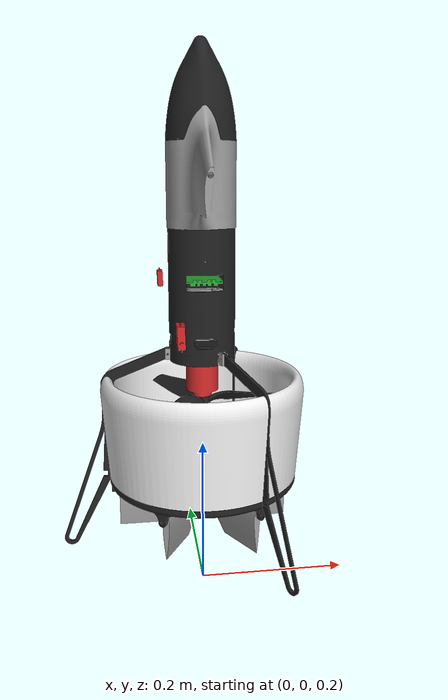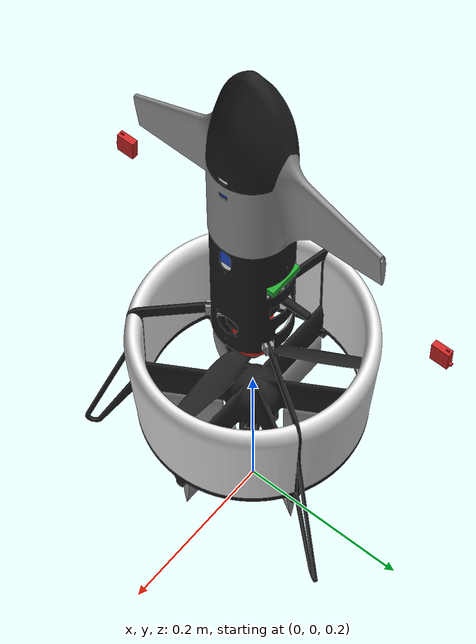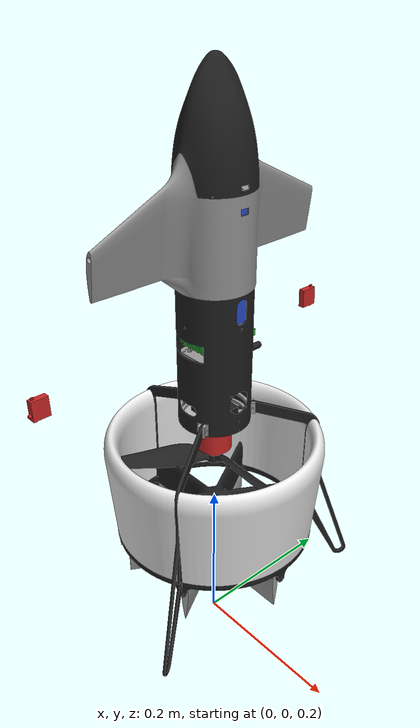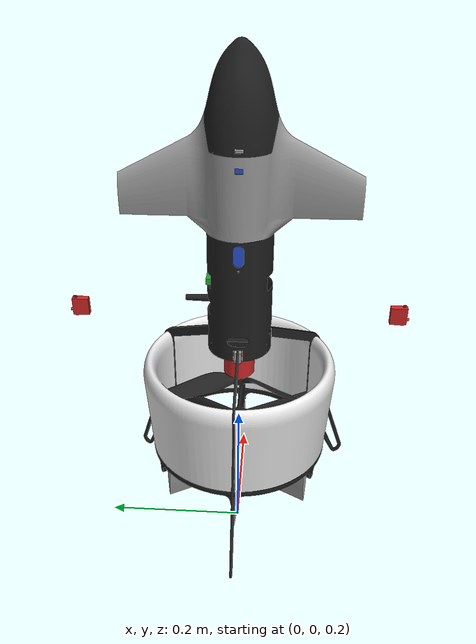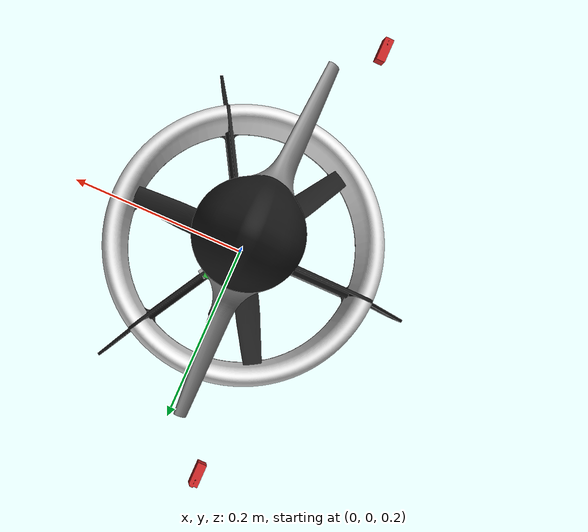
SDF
<?xml version='1.0'?>
<sdf version='1.5'>
  <model name='SHC09'>
    <pose>0 0 0.5 0 0 0</pose>
    <link name='base_link'>
      <inertial>
        <pose>0 0 0.117687 0 0 0</pose>
        <mass>1.6</mass>
        <inertia>
            <ixx>0.01149</ixx>
            <ixy>0</ixy>
            <ixz>0</ixz>
            <iyy>0.01153</iyy>
            <iyz>0</iyz>
            <izz>0.004865</izz>
          </inertia>
      </inertial>
      <visual name='visual'>
        <pose>0 0 0 0 -0 3.1415926</pose>
        <geometry>
          <mesh>
            <uri>model://SHC09/meshes/Battery-6s-10000-2170.STL</uri>
            <scale>1 1 1</scale>
          </mesh>
        </geometry>
        <material>
          <lighting>1</lighting>
          <script>
            <uri>file://media/materials/scripts/gazebo.material</uri>
            <name>Gazebo/Blue</name>
          </script>
          <shader type='pixel'/>
          <emissive>0 0 0 1</emissive>
        </material>
        <transparency>0</transparency>
        <cast_shadows>1</cast_shadows>
      </visual>
      <collision name='collision'>
        <pose>0.0 -0.0 0.07 0 -0 0</pose>
        <geometry>
          <box>
            <size>0.25 0.25 0.6</size>
          </box>
        </geometry>
      </collision>
      <gravity>1</gravity>
      <velocity_decay/>
      <self_collide>0</self_collide>
    </link>
    <link name='link_1'>
      <inertial>
        <mass>0.00000001</mass>
        <inertia>
          <ixx>0.000001</ixx>
          <ixy>0.0</ixy>
          <iyy>0.000001</iyy>
          <ixz>0.0</ixz>
          <iyz>0.0</iyz>
          <izz>0.000001</izz>
        </inertia>
      </inertial>

      <visual name='visual'>
        <pose>0 0 0 0 -0 3.1415926</pose>
        <geometry>
          <mesh>
            <uri>model://SHC09/meshes/bec-Hobbywing-Platinum 60A.STL</uri>
            <scale>1 1 1</scale>
          </mesh>
        </geometry>
        <material>
          <lighting>1</lighting>
          <script>
            <uri>file://media/materials/scripts/gazebo.material</uri>
            <name>Gazebo/Black</name>
          </script>
          <shader type='pixel'/>
          <emissive>0 0 0 1</emissive>
        </material>
        <transparency>0</transparency>
        <cast_shadows>1</cast_shadows>
      </visual>
    </link>
    <link name='link_10'>
      <inertial>
        <mass>0.00000001</mass>
        <inertia>
          <ixx>0.000001</ixx>
          <ixy>0.0</ixy>
          <iyy>0.000001</iyy>
          <ixz>0.0</ixz>
          <iyz>0.0</iyz>
          <izz>0.000001</izz>
        </inertia>
      </inertial>
      <visual name='visual'>
        <pose>0 0 0 0 -0 3.1415926</pose>
        <geometry>
          <mesh>
            <uri>model://SHC09/meshes/duct-b-SHW09.STL</uri>
            <scale>1 1 1</scale>
          </mesh>
        </geometry>
        <material>
          <lighting>1</lighting>
          <script>
            <uri>file://media/materials/scripts/gazebo.material</uri>
            <name>Gazebo/Black</name>
          </script>
          <shader type='pixel'/>
          <emissive>0 0 0 1</emissive>
        </material>
        <transparency>0</transparency>
        <cast_shadows>1</cast_shadows>
      </visual>
    </link>
    <link name='link_11'>
      <inertial>
        <mass>0.00000001</mass>
        <inertia>
          <ixx>0.000001</ixx>
          <ixy>0.0</ixy>
          <iyy>0.000001</iyy>
          <ixz>0.0</ixz>
          <iyz>0.0</iyz>
          <izz>0.000001</izz>
        </inertia>
      </inertial>

      <visual name='visual'>
        <pose>0 0 0 0 -0 3.1415926</pose>
        <geometry>
          <mesh>
            <uri>model://SHC09/meshes/duct-SH09-1.STL</uri>
            <scale>1 1 1</scale>
          </mesh>
        </geometry>
        <material>
          <lighting>1</lighting>
          <script>
            <uri>file://media/materials/scripts/gazebo.material</uri>
            <name>Gazebo/White</name>
          </script>
          <shader type='pixel'/>
          <emissive>0 0 0 1</emissive>
        </material>
        <transparency>0</transparency>
        <cast_shadows>1</cast_shadows>
      </visual>
    </link>
    <link name='link_12'>
      <inertial>
        <mass>0.00000001</mass>
        <inertia>
          <ixx>0.000001</ixx>
          <ixy>0.0</ixy>
          <iyy>0.000001</iyy>
          <ixz>0.0</ixz>
          <iyz>0.0</iyz>
          <izz>0.000001</izz>
        </inertia>
      </inertial>

      <visual name='visual'>
        <pose>0 0 0 0 -0 3.1415926</pose>
        <geometry>
          <mesh>
            <uri>model://SHC09/meshes/duct-SH09-2.STL</uri>
            <scale>1 1 1</scale>
          </mesh>
        </geometry>
        <material>
          <lighting>1</lighting>
          <script>
            <uri>file://media/materials/scripts/gazebo.material</uri>
            <name>Gazebo/White</name>
          </script>
          <shader type='pixel'/>
          <emissive>0 0 0 1</emissive>
        </material>
        <transparency>0</transparency>
        <cast_shadows>1</cast_shadows>
      </visual>
    </link>
    <link name='link_13'>
      <inertial>
        <mass>0.00000001</mass>
        <inertia>
          <ixx>0.000001</ixx>
          <ixy>0.0</ixy>
          <iyy>0.000001</iyy>
          <ixz>0.0</ixz>
          <iyz>0.0</iyz>
          <izz>0.000001</izz>
        </inertia>
      </inertial>

      <visual name='visual'>
        <pose>0 0 0 0 -0 3.1415926</pose>
        <geometry>
          <mesh>
            <uri>model://SHC09/meshes/duct-SH09-3.STL</uri>
            <scale>1 1 1</scale>
          </mesh>
        </geometry>
        <material>
          <lighting>1</lighting>
          <script>
            <uri>file://media/materials/scripts/gazebo.material</uri>
            <name>Gazebo/White</name>
          </script>
          <shader type='pixel'/>
          <emissive>0 0 0 1</emissive>
        </material>
        <transparency>0</transparency>
        <cast_shadows>1</cast_shadows>
      </visual>
    </link>
    <link name='link_14'>
      <inertial>
        <mass>0.00000001</mass>
        <inertia>
          <ixx>0.000001</ixx>
          <ixy>0.0</ixy>
          <iyy>0.000001</iyy>
          <ixz>0.0</ixz>
          <iyz>0.0</iyz>
          <izz>0.000001</izz>
        </inertia>
      </inertial>

      <visual name='visual'>
        <pose>0 0 0 0 -0 3.1415926</pose>
        <geometry>
          <mesh>
            <uri>model://SHC09/meshes/fuselage-09.STL</uri>
            <scale>1 1 1</scale>
          </mesh>
        </geometry>
        <material>
          <lighting>1</lighting>
          <script>
            <uri>file://media/materials/scripts/gazebo.material</uri>
            <name>Gazebo/Black</name>
          </script>
          <shader type='pixel'/>
          <emissive>0 0 0 1</emissive>
        </material>
        <transparency>0</transparency>
        <cast_shadows>1</cast_shadows>
      </visual>
    </link>
    <link name='link_15'>
      <inertial>
        <mass>0.00000001</mass>
        <inertia>
          <ixx>0.000001</ixx>
          <ixy>0.0</ixy>
          <iyy>0.000001</iyy>
          <ixz>0.0</ixz>
          <iyz>0.0</iyz>
          <izz>0.000001</izz>
        </inertia>
      </inertial>

      <visual name='visual'>
        <pose>0 0 0 0 -0 3.1415926</pose>
        <geometry>
          <mesh>
            <uri>model://SHC09/meshes/head-SHC09-1.STL</uri>
            <scale>1 1 1</scale>
          </mesh>
        </geometry>
        <material>
          <lighting>1</lighting>
          <script>
            <uri>file://media/materials/scripts/gazebo.material</uri>
            <name>Gazebo/Black</name>
          </script>
          <shader type='pixel'/>
          <emissive>0 0 0 1</emissive>
        </material>
        <transparency>0</transparency>
        <cast_shadows>1</cast_shadows>
      </visual>
    </link>
    <link name='link_16'>
      <inertial>
        <mass>0.00000001</mass>
        <inertia>
          <ixx>0.000001</ixx>
          <ixy>0.0</ixy>
          <iyy>0.000001</iyy>
          <ixz>0.0</ixz>
          <iyz>0.0</iyz>
          <izz>0.000001</izz>
        </inertia>
      </inertial>

      <visual name='visual'>
        <pose>0 0 0 0 -0 3.1415926</pose>
        <geometry>
          <mesh>
            <uri>model://SHC09/meshes/head-SHC09-2.STL</uri>
            <scale>1 1 1</scale>
          </mesh>
        </geometry>
        <material>
          <lighting>1</lighting>
          <script>
            <uri>file://media/materials/scripts/gazebo.material</uri>
            <name>Gazebo/Grey</name>
          </script>
          <shader type='pixel'/>
          <emissive>0 0 0 1</emissive>
        </material>
        <transparency>0</transparency>
        <cast_shadows>1</cast_shadows>
      </visual>
    </link>
    <link name='link_17'>
      <inertial>
        <mass>0.00000001</mass>
        <inertia>
          <ixx>0.000001</ixx>
          <ixy>0.0</ixy>
          <iyy>0.000001</iyy>
          <ixz>0.0</ixz>
          <iyz>0.0</iyz>
          <izz>0.000001</izz>
        </inertia>
      </inertial>

      <visual name='visual'>
        <pose>0 0 0 0 -0 3.1415926</pose>
        <geometry>
          <mesh>
            <uri>model://SHC09/meshes/motor-Sunnysky-X3520-7-780KV III.STL</uri>
            <scale>1 1 1</scale>
          </mesh>
        </geometry>
        <material>
          <lighting>1</lighting>
          <script>
            <uri>file://media/materials/scripts/gazebo.material</uri>
            <name>Gazebo/Red</name>
          </script>
          <shader type='pixel'/>
          <emissive>0 0 0 1</emissive>
        </material>
        <transparency>0</transparency>
        <cast_shadows>1</cast_shadows>
      </visual>
    </link>
    <link name='rotor'>
      <inertial>
        <mass>0.01836</mass>
        <inertia>
          <ixx>0.000019</ixx>
          <ixy>0</ixy>
          <ixz>0</ixz>
          <iyy>0.000019</iyy>
          <iyz>0</iyz>
          <izz>0.000037</izz>
        </inertia>
        <pose>-0.0 -0.0 -0.04250779552 0 -0 0</pose>
      </inertial>
      <gravity>1</gravity>
      <self_collide>0</self_collide>
      <kinematic>0</kinematic>
      <enable_wind>0</enable_wind>
      <visual name='visual'>
        <pose>0 0 0 0 -0 3.1415926</pose>
        <geometry>
          <mesh>
            <uri>model://SHC09/meshes/Rotor-iflight-13inch-2-CW-cut9.STL</uri>
            <scale>1 1 1</scale>
          </mesh>
        </geometry>
        <material>
          <lighting>1</lighting>
          <script>
            <uri>file://media/materials/scripts/gazebo.material</uri>
            <name>Gazebo/Black</name>
          </script>
          <shader type='pixel'/>
          <emissive>0 0 0 1</emissive>
        </material>
        <transparency>0</transparency>
        <cast_shadows>1</cast_shadows>
      </visual>
    </link>
    <link name='link_19'>
      <inertial>
        <mass>0.00000001</mass>
        <inertia>
          <ixx>0.000001</ixx>
          <ixy>0.0</ixy>
          <iyy>0.000001</iyy>
          <ixz>0.0</ixz>
          <iyz>0.0</iyz>
          <izz>0.000001</izz>
        </inertia>
      </inertial>

      <visual name='visual'>
        <pose>0 0 0 0 -0 3.1415926</pose>
        <geometry>
          <mesh>
            <uri>model://SHC09/meshes/RTK-antenna.STL</uri>
            <scale>1 1 1</scale>
          </mesh>
        </geometry>
        <material>
          <lighting>1</lighting>
          <script>
            <uri>file://media/materials/scripts/gazebo.material</uri>
            <name>Gazebo/Grey</name>
          </script>
          <shader type='pixel'/>
          <emissive>0 0 0 1</emissive>
        </material>
        <transparency>0</transparency>
        <cast_shadows>1</cast_shadows>
      </visual>
    </link>
    <link name='link_2'>
      <inertial>
        <mass>0.00000001</mass>
        <inertia>
          <ixx>0.000001</ixx>
          <ixy>0.0</ixy>
          <iyy>0.000001</iyy>
          <ixz>0.0</ixz>
          <iyz>0.0</iyz>
          <izz>0.000001</izz>
        </inertia>
      </inertial>

      <visual name='visual'>
        <pose>0 0 0 0 -0 3.1415926</pose>
        <geometry>
          <mesh>
            <uri>model://SHC09/meshes/box up-09.STL</uri>
            <scale>1 1 1</scale>
          </mesh>
        </geometry>
        <material>
          <lighting>1</lighting>
          <script>
            <uri>file://media/materials/scripts/gazebo.material</uri>
            <name>Gazebo/Grey</name>
          </script>
          <shader type='pixel'/>
          <emissive>0 0 0 1</emissive>
        </material>
        <transparency>0</transparency>
        <cast_shadows>1</cast_shadows>
      </visual>
    </link>
    <link name='link_20'>
      <inertial>
        <mass>0.00000001</mass>
        <inertia>
          <ixx>0.000001</ixx>
          <ixy>0.0</ixy>
          <iyy>0.000001</iyy>
          <ixz>0.0</ixz>
          <iyz>0.0</iyz>
          <izz>0.000001</izz>
        </inertia>
        <pose>0.018145 0 -0.152522 0 -0 0</pose>
      </inertial>

      <visual name='visual'>
        <pose>0 0 0 0 -0 3.1415926</pose>
        <geometry>
          <mesh>
            <uri>model://SHC09/meshes/servo-KST-X08H-1.STL</uri>
            <scale>1 1 1</scale>
          </mesh>
        </geometry>
        <material>
          <lighting>1</lighting>
          <script>
            <uri>file://media/materials/scripts/gazebo.material</uri>
            <name>Gazebo/Red</name>
          </script>
          <shader type='pixel'/>
          <emissive>0 0 0 1</emissive>
        </material>
        <transparency>0</transparency>
        <cast_shadows>1</cast_shadows>
      </visual>
    </link>
    <link name='link_21'>
      <inertial>
        <mass>0.00000001</mass>
        <inertia>
          <ixx>0.000001</ixx>
          <ixy>0.0</ixy>
          <iyy>0.000001</iyy>
          <ixz>0.0</ixz>
          <iyz>0.0</iyz>
          <izz>0.000001</izz>
        </inertia>
        <pose>0.009 -0.015714 -0.152522 0 -0 0</pose>
      </inertial>

      <visual name='visual'>
        <pose>0 0 0 0 -0 3.1415926</pose>
        <geometry>
          <mesh>
            <uri>model://SHC09/meshes/servo-KST-X08H-2.STL</uri>
            <scale>1 1 1</scale>
          </mesh>
        </geometry>
        <material>
          <lighting>1</lighting>
          <script>
            <uri>file://media/materials/scripts/gazebo.material</uri>
            <name>Gazebo/Red</name>
          </script>
          <shader type='pixel'/>
          <emissive>0 0 0 1</emissive>
        </material>
        <transparency>0</transparency>
        <cast_shadows>1</cast_shadows>
      </visual>
    </link>
    <link name='link_22'>
      <inertial>
        <mass>0.00000001</mass>
        <inertia>
          <ixx>0.000001</ixx>
          <ixy>0.0</ixy>
          <iyy>0.000001</iyy>
          <ixz>0.0</ixz>
          <iyz>0.0</iyz>
          <izz>0.000001</izz>
        </inertia>
        <pose>-0.009072 -0.015714 -0.152522 0 -0 0</pose>
      </inertial>

      <visual name='visual'>
        <pose>0 0 0 0 -0 3.1415926</pose>
        <geometry>
          <mesh>
            <uri>model://SHC09/meshes/servo-KST-X08H-3.STL</uri>
            <scale>1 1 1</scale>
          </mesh>
        </geometry>
        <material>
          <lighting>1</lighting>
          <script>
            <uri>file://media/materials/scripts/gazebo.material</uri>
            <name>Gazebo/Red</name>
          </script>
          <shader type='pixel'/>
          <emissive>0 0 0 1</emissive>
        </material>
        <transparency>0</transparency>
        <cast_shadows>1</cast_shadows>
      </visual>
    </link>
    <link name='link_23'>
      <inertial>
        <mass>0.00000001</mass>
        <inertia>
          <ixx>0.000001</ixx>
          <ixy>0.0</ixy>
          <iyy>0.000001</iyy>
          <ixz>0.0</ixz>
          <iyz>0.0</iyz>
          <izz>0.000001</izz>
        </inertia>
        <pose>-0.018145 0 -0.152522 0 -0 0</pose>
      </inertial>

      <visual name='visual'>
        <pose>0 0 0 0 -0 3.1415926</pose>
        <geometry>
          <mesh>
            <uri>model://SHC09/meshes/servo-KST-X08H-4.STL</uri>
            <scale>1 1 1</scale>
          </mesh>
        </geometry>
        <material>
          <lighting>1</lighting>
          <script>
            <uri>file://media/materials/scripts/gazebo.material</uri>
            <name>Gazebo/Red</name>
          </script>
          <shader type='pixel'/>
          <emissive>0 0 0 1</emissive>
        </material>
        <transparency>0</transparency>
        <cast_shadows>1</cast_shadows>
      </visual>
    </link>
    <link name='link_24'>
      <inertial>
        <mass>0.00000001</mass>
        <inertia>
          <ixx>0.000001</ixx>
          <ixy>0.0</ixy>
          <iyy>0.000001</iyy>
          <ixz>0.0</ixz>
          <iyz>0.0</iyz>
          <izz>0.000001</izz>
        </inertia>
        <pose>-0.009072 0.015714 -0.152522 0 -0 0</pose>
      </inertial>

      <visual name='visual'>
        <pose>0 0 0 0 -0 3.1415926</pose>
        <geometry>
          <mesh>
            <uri>model://SHC09/meshes/servo-KST-X08H-5.STL</uri>
            <scale>1 1 1</scale>
          </mesh>
        </geometry>
        <material>
          <lighting>1</lighting>
          <script>
            <uri>file://media/materials/scripts/gazebo.material</uri>
            <name>Gazebo/Red</name>
          </script>
          <shader type='pixel'/>
          <emissive>0 0 0 1</emissive>
        </material>
        <transparency>0</transparency>
        <cast_shadows>1</cast_shadows>
      </visual>
    </link>
    <link name='link_25'>
      <inertial>
        <mass>0.00000001</mass>
        <inertia>
          <ixx>0.000001</ixx>
          <ixy>0.0</ixy>
          <iyy>0.000001</iyy>
          <ixz>0.0</ixz>
          <iyz>0.0</iyz>
          <izz>0.000001</izz>
        </inertia>
        <pose>0.009072 0.015714 -0.152522 0 -0 0</pose>
      </inertial>

      <visual name='visual'>
        <pose>0 0 0 0 -0 3.1415926</pose>
        <geometry>
          <mesh>
            <uri>model://SHC09/meshes/servo-KST-X08H-6.STL</uri>
            <scale>1 1 1</scale>
          </mesh>
        </geometry>
        <material>
          <lighting>1</lighting>
          <script>
            <uri>file://media/materials/scripts/gazebo.material</uri>
            <name>Gazebo/Red</name>
          </script>
          <shader type='pixel'/>
          <emissive>0 0 0 1</emissive>
        </material>
        <transparency>0</transparency>
        <cast_shadows>1</cast_shadows>
      </visual>
    </link>
    <link name='link_26'>
      <inertial>
        <mass>0.00000001</mass>
        <inertia>
          <ixx>0.000001</ixx>
          <ixy>0.0</ixy>
          <iyy>0.000001</iyy>
          <ixz>0.0</ixz>
          <iyz>0.0</iyz>
          <izz>0.000001</izz>
        </inertia>
      </inertial>

      <visual name='visual'>
        <pose>0 0 0 0 -0 3.1415926</pose>
        <geometry>
          <mesh>
            <uri>model://SHC09/meshes/shelf1-SHC09.STL</uri>
            <scale>1 1 1</scale>
          </mesh>
        </geometry>
        <material>
          <lighting>1</lighting>
          <script>
            <uri>file://media/materials/scripts/gazebo.material</uri>
            <name>Gazebo/Grey</name>
          </script>
          <shader type='pixel'/>
          <emissive>0 0 0 1</emissive>
        </material>
        <transparency>0</transparency>
        <cast_shadows>1</cast_shadows>
      </visual>
    </link>
    <link name='link_27'>
      <inertial>
        <mass>0.00000001</mass>
        <inertia>
          <ixx>0.000001</ixx>
          <ixy>0.0</ixy>
          <iyy>0.000001</iyy>
          <ixz>0.0</ixz>
          <iyz>0.0</iyz>
          <izz>0.000001</izz>
        </inertia>
      </inertial>

      <visual name='visual'>
        <pose>0 0 0 0 -0 3.1415926</pose>
        <geometry>
          <mesh>
            <uri>model://SHC09/meshes/shelf2-SHC09.STL</uri>
            <scale>1 1 1</scale>
          </mesh>
        </geometry>
        <material>
          <lighting>1</lighting>
          <script>
            <uri>file://media/materials/scripts/gazebo.material</uri>
            <name>Gazebo/Grey</name>
          </script>
          <shader type='pixel'/>
          <emissive>0 0 0 1</emissive>
        </material>
        <transparency>0</transparency>
        <cast_shadows>1</cast_shadows>
      </visual>
    </link>
    <link name='link_28'>
      <inertial>
        <mass>0.00000001</mass>
        <inertia>
          <ixx>0.000001</ixx>
          <ixy>0.0</ixy>
          <iyy>0.000001</iyy>
          <ixz>0.0</ixz>
          <iyz>0.0</iyz>
          <izz>0.000001</izz>
        </inertia>
      </inertial>

      <visual name='visual'>
        <pose>0 0 0 0 -0 3.1415926</pose>
        <geometry>
          <mesh>
            <uri>model://SHC09/meshes/shelf3-09.STL</uri>
            <scale>1 1 1</scale>
          </mesh>
        </geometry>
        <material>
          <lighting>1</lighting>
          <script>
            <uri>file://media/materials/scripts/gazebo.material</uri>
            <name>Gazebo/Grey</name>
          </script>
          <shader type='pixel'/>
          <emissive>0 0 0 1</emissive>
        </material>
        <transparency>0</transparency>
        <cast_shadows>1</cast_shadows>
      </visual>
    </link>
    <link name='link_29'>
      <inertial>
        <mass>0.00000001</mass>
        <inertia>
          <ixx>0.000001</ixx>
          <ixy>0.0</ixy>
          <iyy>0.000001</iyy>
          <ixz>0.0</ixz>
          <iyz>0.0</iyz>
          <izz>0.000001</izz>
        </inertia>
      </inertial>

      <visual name='visual'>
        <pose>0 0 0 0 -0 3.1415926</pose>
        <geometry>
          <mesh>
            <uri>model://SHC09/meshes/shelf4-09.STL</uri>
            <scale>1 1 1</scale>
          </mesh>
        </geometry>
        <material>
          <lighting>1</lighting>
          <script>
            <uri>file://media/materials/scripts/gazebo.material</uri>
            <name>Gazebo/Grey</name>
          </script>
          <shader type='pixel'/>
          <emissive>0 0 0 1</emissive>
        </material>
        <transparency>0</transparency>
        <cast_shadows>1</cast_shadows>
      </visual>
    </link>
    <link name='CS4'>
      <inertial>
        <mass>0.00000001</mass>
        <inertia>
          <ixx>0.000001</ixx>
          <ixy>0.0</ixy>
          <iyy>0.000001</iyy>
          <ixz>0.0</ixz>
          <iyz>0.0</iyz>
          <izz>0.000001</izz>
        </inertia>
        <pose>-0.073 0 -0.174479 0 -0 0</pose>
      </inertial>

      <visual name='visual'>
        <pose>0 0 0 0 -0 3.1415926</pose>
        <geometry>
          <mesh>
            <uri>model://SHC09/meshes/control surface-60-80-1.STL</uri>
            <scale>1 1 1</scale>
          </mesh>
        </geometry>
        <material>
          <lighting>1</lighting>
          <script>
            <uri>file://media/materials/scripts/gazebo.material</uri>
            <name>Gazebo/Grey</name>
          </script>
          <shader type='pixel'/>
          <emissive>0 0 0 1</emissive>
        </material>
        <transparency>0</transparency>
        <cast_shadows>1</cast_shadows>
      </visual>
    </link>
    <link name='link_30'>
      <inertial>
        <mass>0.00000001</mass>
        <inertia>
          <ixx>0.000001</ixx>
          <ixy>0.0</ixy>
          <iyy>0.000001</iyy>
          <ixz>0.0</ixz>
          <iyz>0.0</iyz>
          <izz>0.000001</izz>
        </inertia>
      </inertial>

      <visual name='visual'>
        <pose>0 0 0 0 -0 3.1415926</pose>
        <geometry>
          <mesh>
            <uri>model://SHC09/meshes/tail-SHW09-1.STL</uri>
            <scale>1 1 1</scale>
          </mesh>
        </geometry>
        <material>
          <lighting>1</lighting>
          <script>
            <uri>file://media/materials/scripts/gazebo.material</uri>
            <name>Gazebo/Black</name>
          </script>
          <shader type='pixel'/>
          <emissive>0 0 0 1</emissive>
        </material>
        <transparency>0</transparency>
        <cast_shadows>1</cast_shadows>
      </visual>
    </link>
    <link name='link_31'>
      <inertial>
        <mass>0.00000001</mass>
        <inertia>
          <ixx>0.000001</ixx>
          <ixy>0.0</ixy>
          <iyy>0.000001</iyy>
          <ixz>0.0</ixz>
          <iyz>0.0</iyz>
          <izz>0.000001</izz>
        </inertia>
      </inertial>

      <visual name='visual'>
        <pose>0 0 0 0 -0 3.1415926</pose>
        <geometry>
          <mesh>
            <uri>model://SHC09/meshes/tail-SHW09-2.STL</uri>
            <scale>1 1 1</scale>
          </mesh>
        </geometry>
        <material>
          <lighting>1</lighting>
          <script>
            <uri>file://media/materials/scripts/gazebo.material</uri>
            <name>Gazebo/Black</name>
          </script>
          <shader type='pixel'/>
          <emissive>0 0 0 1</emissive>
        </material>
        <transparency>0</transparency>
        <cast_shadows>1</cast_shadows>
      </visual>
    </link>
    <link name='link_32'>
      <inertial>
        <mass>0.00000001</mass>
        <inertia>
          <ixx>0.000001</ixx>
          <ixy>0.0</ixy>
          <iyy>0.000001</iyy>
          <ixz>0.0</ixz>
          <iyz>0.0</iyz>
          <izz>0.000001</izz>
        </inertia>
      </inertial>

      <visual name='visual'>
        <pose>0 0 0 0 -0 3.1415926</pose>
        <geometry>
          <mesh>
            <uri>model://SHC09/meshes/tail-SHW09-3.STL</uri>
            <scale>1 1 1</scale>
          </mesh>
        </geometry>
        <material>
          <lighting>1</lighting>
          <script>
            <uri>file://media/materials/scripts/gazebo.material</uri>
            <name>Gazebo/Black</name>
          </script>
          <shader type='pixel'/>
          <emissive>0 0 0 1</emissive>
        </material>
        <transparency>0</transparency>
        <cast_shadows>1</cast_shadows>
      </visual>
    </link>
    <link name='link_33'>
      <inertial>
        <mass>0.00000001</mass>
        <inertia>
          <ixx>0.000001</ixx>
          <ixy>0.0</ixy>
          <iyy>0.000001</iyy>
          <ixz>0.0</ixz>
          <iyz>0.0</iyz>
          <izz>0.000001</izz>
        </inertia>
      </inertial>

      <visual name='visual'>
        <pose>0 0 0 0 -0 3.1415926</pose>
        <geometry>
          <mesh>
            <uri>model://SHC09/meshes/X-tend.STL</uri>
            <scale>1 1 1</scale>
          </mesh>
        </geometry>
        <material>
          <lighting>1</lighting>
          <script>
            <uri>file://media/materials/scripts/gazebo.material</uri>
            <name>Gazebo/Black</name>
          </script>
          <shader type='pixel'/>
          <emissive>0 0 0 1</emissive>
        </material>
        <transparency>0</transparency>
        <cast_shadows>1</cast_shadows>
      </visual>
    </link>
    <link name='CS5'>
      <inertial>
        <mass>0.00000001</mass>
        <inertia>
          <ixx>0.000001</ixx>
          <ixy>0.0</ixy>
          <iyy>0.000001</iyy>
          <ixz>0.0</ixz>
          <iyz>0.0</iyz>
          <izz>0.000001</izz>
        </inertia>
        <pose>-0.036849 0.063825 -0.174479 0 -0 0</pose>
      </inertial>

      <visual name='visual'>
        <pose>0 0 0 0 -0 3.1415926</pose>
        <geometry>
          <mesh>
            <uri>model://SHC09/meshes/control surface-60-80-2.STL</uri>
            <scale>1 1 1</scale>
          </mesh>
        </geometry>
        <material>
          <lighting>1</lighting>
          <script>
            <uri>file://media/materials/scripts/gazebo.material</uri>
            <name>Gazebo/Grey</name>
          </script>
          <shader type='pixel'/>
          <emissive>0 0 0 1</emissive>
        </material>
        <transparency>0</transparency>
        <cast_shadows>1</cast_shadows>
      </visual>
    </link>
    <link name='CS6'>
      <inertial>
        <mass>0.00000001</mass>
        <inertia>
          <ixx>0.000001</ixx>
          <ixy>0.0</ixy>
          <iyy>0.000001</iyy>
          <ixz>0.0</ixz>
          <iyz>0.0</iyz>
          <izz>0.000001</izz>
        </inertia>
        <pose>0.036849 0.063825 -0.174479 0 -0 0</pose>
      </inertial>

      <visual name='visual'>
        <pose>0 0 0 0 -0 3.1415926</pose>
        <geometry>
          <mesh>
            <uri>model://SHC09/meshes/control surface-60-80-3.STL</uri>
            <scale>1 1 1</scale>
          </mesh>
        </geometry>
        <material>
          <lighting>1</lighting>
          <script>
            <uri>file://media/materials/scripts/gazebo.material</uri>
            <name>Gazebo/Grey</name>
          </script>
          <shader type='pixel'/>
          <emissive>0 0 0 1</emissive>
        </material>
        <transparency>0</transparency>
        <cast_shadows>1</cast_shadows>
      </visual>
    </link>
    <link name='CS1'>
      <inertial>
        <mass>0.00000001</mass>
        <inertia>
          <ixx>0.000001</ixx>
          <ixy>0.0</ixy>
          <iyy>0.000001</iyy>
          <ixz>0.0</ixz>
          <iyz>0.0</iyz>
          <izz>0.000001</izz>
        </inertia>
        <pose>0.073699 0 -0.174479 0 -0 0</pose>
      </inertial>

      <visual name='visual'>
        <pose>0 0 0 0 -0 3.1415926</pose>
        <geometry>
          <mesh>
            <uri>model://SHC09/meshes/control surface-60-80-4.STL</uri>
            <scale>1 1 1</scale>
          </mesh>
        </geometry>
        <material>
          <lighting>1</lighting>
          <script>
            <uri>file://media/materials/scripts/gazebo.material</uri>
            <name>Gazebo/Grey</name>
          </script>
          <shader type='pixel'/>
          <emissive>0 0 0 1</emissive>
        </material>
        <transparency>0</transparency>
        <cast_shadows>1</cast_shadows>
      </visual>
    </link>
    <link name='CS2'>
      <inertial>
        <mass>0.00000001</mass>
        <inertia>
          <ixx>0.000001</ixx>
          <ixy>0.0</ixy>
          <iyy>0.000001</iyy>
          <ixz>0.0</ixz>
          <iyz>0.0</iyz>
          <izz>0.000001</izz>
        </inertia>
        <pose>0.036849 -0.063825 -0.174479 0 -0 0</pose>
      </inertial>

      <visual name='visual'>
        <pose>0 0 0 0 -0 3.1415926</pose>
        <geometry>
          <mesh>
            <uri>model://SHC09/meshes/control surface-60-80-5.STL</uri>
            <scale>1 1 1</scale>
          </mesh>
        </geometry>
        <material>
          <lighting>1</lighting>
          <script>
            <uri>file://media/materials/scripts/gazebo.material</uri>
            <name>Gazebo/Grey</name>
          </script>
          <shader type='pixel'/>
          <emissive>0 0 0 1</emissive>
        </material>
        <transparency>0</transparency>
        <cast_shadows>1</cast_shadows>
      </visual>
    </link>
    <link name='CS3'>
      <inertial>
        <mass>0.00000001</mass>
        <inertia>
          <ixx>0.000001</ixx>
          <ixy>0.0</ixy>
          <iyy>0.000001</iyy>
          <ixz>0.0</ixz>
          <iyz>0.0</iyz>
          <izz>0.000001</izz>
        </inertia>
        <pose>-0.036849 -0.063825 -0.174479 0 -0 0</pose>
      </inertial>

      <visual name='visual'>
        <pose>0 0 0 0 -0 3.1415926</pose>
        <geometry>
          <mesh>
            <uri>model://SHC09/meshes/control surface-60-80-6.STL</uri>
            <scale>1 1 1</scale>
          </mesh>
        </geometry>
        <material>
          <lighting>1</lighting>
          <script>
            <uri>file://media/materials/scripts/gazebo.material</uri>
            <name>Gazebo/Grey</name>
          </script>
          <shader type='pixel'/>
          <emissive>0 0 0 1</emissive>
        </material>
        <transparency>0</transparency>
        <cast_shadows>1</cast_shadows>
      </visual>
    </link>
    <link name='link_9'>
      <inertial>
        <mass>0.00000001</mass>
        <inertia>
          <ixx>0.000001</ixx>
          <ixy>0.0</ixy>
          <iyy>0.000001</iyy>
          <ixz>0.0</ixz>
          <iyz>0.0</iyz>
          <izz>0.000001</izz>
        </inertia>
      </inertial>

      <visual name='visual'>
        <pose>0 0 0 0 -0 3.1415926</pose>
        <geometry>
          <mesh>
            <uri>model://SHC09/meshes/controller3STL.STL</uri>
            <scale>1 1 1</scale>
          </mesh>
        </geometry>
        <material>
          <lighting>1</lighting>
          <script>
            <uri>file://media/materials/scripts/gazebo.material</uri>
            <name>Gazebo/Green</name>
          </script>
          <shader type='pixel'/>
          <emissive>0 0 0 1</emissive>
        </material>
        <transparency>0</transparency>
        <cast_shadows>1</cast_shadows>
      </visual>
    </link>
    <joint name='link_0_JOINT_0' type='fixed'>
      <parent>base_link</parent>
      <child>link_1</child>
      <pose>0 0 0 0 -0 0</pose>
    </joint>
    <joint name='link_0_JOINT_10' type='fixed'>
      <parent>base_link</parent>
      <child>link_10</child>
      <pose>0 0 0 0 -0 0</pose>
    </joint>
    <joint name='link_0_JOINT_11' type='fixed'>
      <parent>base_link</parent>
      <child>link_11</child>
      <pose>0 0 0 0 -0 0</pose>
    </joint>
    <joint name='link_0_JOINT_12' type='fixed'>
      <parent>base_link</parent>
      <child>link_12</child>
      <pose>0 0 0 0 -0 0</pose>
    </joint>
    <joint name='link_0_JOINT_13' type='fixed'>
      <parent>base_link</parent>
      <child>link_13</child>
      <pose>0 0 0 0 -0 0</pose>
    </joint>
    <joint name='link_0_JOINT_14' type='fixed'>
      <parent>base_link</parent>
      <child>link_14</child>
      <pose>0 0 0 0 -0 0</pose>
    </joint>
    <joint name='link_0_JOINT_15' type='fixed'>
      <parent>base_link</parent>
      <child>link_15</child>
      <pose>0 0 0 0 -0 0</pose>
    </joint>
    <joint name='link_0_JOINT_16' type='fixed'>
      <parent>base_link</parent>
      <child>link_16</child>
      <pose>0 0 0 0 -0 0</pose>
    </joint>
    <joint name='link_0_JOINT_17' type='fixed'>
      <parent>base_link</parent>
      <child>link_17</child>
      <pose>0 0 0 0 -0 0</pose>
    </joint>
    <joint name='rotor_joint' type='revolute'>
      <parent>base_link</parent>
      <child>rotor</child>
      <pose>0 0 -0.04 0 -0 0</pose>
      <axis>
        <xyz>0 0 1</xyz>
        <use_parent_model_frame>0</use_parent_model_frame>
        <limit>
          <lower>-1e+16</lower>
          <upper>1e+16</upper>
          <effort>-1</effort>
          <velocity>-1</velocity>
        </limit>
        <dynamics>
          <spring_reference>0</spring_reference>
          <spring_stiffness>0</spring_stiffness>
          <damping>0.0001</damping>
          <friction>0</friction>
        </dynamics>
      </axis>
      <physics>
        <ode>
          <implicit_spring_damper>1</implicit_spring_damper>
        </ode>
      </physics>
    </joint>
    <joint name='link_0_JOINT_19' type='fixed'>
      <parent>base_link</parent>
      <child>link_19</child>
      <pose>0 0 0 0 -0 0</pose>
    </joint>
    <joint name='link_0_JOINT_1' type='fixed'>
      <parent>base_link</parent>
      <child>link_2</child>
      <pose>0 0 0 0 -0 0</pose>
    </joint>
    <joint name='link_0_JOINT_20' type='fixed'>
      <parent>base_link</parent>
      <child>link_20</child>
      <pose>0 0 0 0 -0 0</pose>
    </joint>
    <joint name='link_0_JOINT_21' type='fixed'>
      <parent>base_link</parent>
      <child>link_21</child>
      <pose>0 0 0 0 -0 0</pose>
    </joint>
    <joint name='link_0_JOINT_22' type='fixed'>
      <parent>base_link</parent>
      <child>link_22</child>
      <pose>0 0 0 0 -0 0</pose>
    </joint>
    <joint name='link_0_JOINT_23' type='fixed'>
      <parent>base_link</parent>
      <child>link_23</child>
      <pose>0 0 0 0 -0 0</pose>
    </joint>
    <joint name='link_0_JOINT_24' type='fixed'>
      <parent>base_link</parent>
      <child>link_24</child>
      <pose>0 0 0 0 -0 0</pose>
    </joint>
    <joint name='link_0_JOINT_25' type='fixed'>
      <parent>base_link</parent>
      <child>link_25</child>
      <pose>0 0 0 0 -0 0</pose>
    </joint>
    <joint name='link_0_JOINT_26' type='fixed'>
      <parent>base_link</parent>
      <child>link_26</child>
      <pose>0 0 0 0 -0 0</pose>
    </joint>
    <joint name='link_0_JOINT_27' type='fixed'>
      <parent>base_link</parent>
      <child>link_27</child>
      <pose>0 0 0 0 -0 0</pose>
    </joint>
    <joint name='link_0_JOINT_28' type='fixed'>
      <parent>base_link</parent>
      <child>link_28</child>
      <pose>0 0 0 0 -0 0</pose>
    </joint>
    <joint name='link_0_JOINT_29' type='fixed'>
      <parent>base_link</parent>
      <child>link_29</child>
      <pose>0 0 0 0 -0 0</pose>
    </joint>
    <joint name='link_0_JOINT_30' type='fixed'>
      <parent>base_link</parent>
      <child>link_30</child>
      <pose>0 0 0 0 -0 0</pose>
    </joint>
    <joint name='link_0_JOINT_31' type='fixed'>
      <parent>base_link</parent>
      <child>link_31</child>
      <pose>0 0 0 0 -0 0</pose>
    </joint>
    <joint name='link_0_JOINT_32' type='fixed'>
      <parent>base_link</parent>
      <child>link_32</child>
      <pose>0 0 0 0 -0 0</pose>
    </joint>
    <joint name='link_0_JOINT_33' type='fixed'>
      <parent>base_link</parent>
      <child>link_33</child>
      <pose>0 0 0 0 -0 0</pose>
    </joint>
    <joint name='link_0_JOINT_8' type='fixed'>
      <parent>base_link</parent>
      <child>link_9</child>
      <pose>0 0 0 0 -0 0</pose>
    </joint>

    <joint name='CS1_joint' type='revolute'>
      <parent>base_link</parent>
      <child>CS1</child>
      <pose>0 0 -0.158 0 0 0</pose>
      <axis>
        <xyz>1 0 0</xyz>
        <limit>
          <lower>-0.5</lower>
          <upper>0.5</upper>
        </limit>
        <dynamics>
          <damping>0.001</damping>
        </dynamics>
      </axis>
      <physics>
        <ode>
          <implicit_spring_damper>1</implicit_spring_damper>
        </ode>
      </physics>

    </joint>
    <joint name='CS2_joint' type='revolute'>
      <parent>base_link</parent>
      <child>CS2</child>
      <pose>0 0 -0.158 0 -0 -1.0472</pose>
      <axis>
        <xyz>1 0 0</xyz>
        <limit>
          <lower>-0.5</lower>
          <upper>0.5</upper>
        </limit>
        <dynamics>
          <damping>0.001</damping>
        </dynamics>
      </axis>
      <physics>
        <ode>
          <implicit_spring_damper>1</implicit_spring_damper>
        </ode>
      </physics>

    </joint>
    <joint name='CS3_joint' type='revolute'>
      <parent>base_link</parent>
      <child>CS3</child>
      <pose>0 0 -0.158 0 -0 -2.0944</pose>
      <axis>
        <xyz>1 0 0</xyz>
        <limit>
          <lower>-0.5</lower>
          <upper>0.5</upper>
        </limit>
        <dynamics>
          <damping>0.001</damping>
        </dynamics>
      </axis>
      <physics>
        <ode>
          <implicit_spring_damper>1</implicit_spring_damper>
        </ode>
      </physics>

    </joint>
    <joint name='CS4_joint' type='revolute'>
      <parent>base_link</parent>
      <child>CS4</child>
      <pose>0 0 -0.158 0 -0 -3.1415</pose>
      <axis>
        <xyz>1 0 0</xyz>
        <limit>
          <lower>-0.5</lower>
          <upper>0.5</upper>
        </limit>
        <dynamics>
          <damping>0.001</damping>
        </dynamics>
      </axis>
      <physics>
        <ode>
          <implicit_spring_damper>1</implicit_spring_damper>
        </ode>
      </physics>

    </joint>
    <joint name='CS5_joint' type='revolute'>
      <parent>base_link</parent>
      <child>CS5</child>
      <pose>0 0 -0.158 0 0 2.0944</pose>
      <axis>
        <xyz>1 0 0</xyz>
        <limit>
          <lower>-0.5</lower>
          <upper>0.5</upper>
        </limit>
        <dynamics>
          <damping>0.001</damping>
        </dynamics>
      </axis>
      <physics>
        <ode>
          <implicit_spring_damper>1</implicit_spring_damper>
        </ode>
      </physics>

    </joint>
    <joint name='CS6_joint' type='revolute'>
      <parent>base_link</parent>
      <child>CS6</child>
      <pose>0 0 -0.158 0 0 1.0472</pose>
      <axis>
        <xyz>1 0 0</xyz>
        <limit>
          <lower>-0.5</lower>
          <upper>0.5</upper>
        </limit>
        <dynamics>
          <damping>0.001</damping>
        </dynamics>
      </axis>
      <physics>
        <ode>
          <implicit_spring_damper>1</implicit_spring_damper>
        </ode>
      </physics>

    </joint>
    <link name='SHC09/imu_link'>
      <pose>0 0 0 0 0 0</pose>
      <inertial>
        <pose>0 0 0 0 0 0</pose>
        <mass>0.015</mass>
        <inertia>
          <ixx>1e-05</ixx>
          <ixy>0</ixy>
          <ixz>0</ixz>
          <iyy>1e-05</iyy>
          <iyz>0</iyz>
          <izz>1e-05</izz>
        </inertia>
      </inertial>
    </link>
    <joint name='SHC09/imu_joint' type='revolute'>
      <child>SHC09/imu_link</child>
      <parent>base_link</parent>
      <axis>
        <xyz>1 0 0</xyz>
        <limit>
          <lower>0</lower>
          <upper>0</upper>
          <effort>0</effort>
          <velocity>0</velocity>
        </limit>
        <dynamics>
          <spring_reference>0</spring_reference>
          <spring_stiffness>0</spring_stiffness>
        </dynamics>
        <use_parent_model_frame>1</use_parent_model_frame>
      </axis>
    </joint>
    <link name='SHC09/airspeed_link'>
      <pose>0 0 0 0 0 0</pose>
      <inertial>
        <pose>0 0 0 0 0 0</pose>
        <mass>0.015</mass>
        <inertia>
          <ixx>1e-05</ixx>
          <ixy>0</ixy>
          <ixz>0</ixz>
          <iyy>1e-05</iyy>
          <iyz>0</iyz>
          <izz>1e-05</izz>
        </inertia>
      </inertial>
    </link>
    <joint name='SHC09/airspeed_joint' type='revolute'>
      <child>SHC09/airspeed_link</child>
      <parent>base_link</parent>
      <axis>
        <xyz>1 0 0</xyz>
        <limit>
          <lower>0</lower>
          <upper>0</upper>
          <effort>0</effort>
          <velocity>0</velocity>
        </limit>
        <dynamics>
          <spring_reference>0</spring_reference>
          <spring_stiffness>0</spring_stiffness>
        </dynamics>
        <use_parent_model_frame>1</use_parent_model_frame>
      </axis>
    </joint>
    <include>
      <uri>model://gps</uri>
      <pose>0 0 0 0 0 0</pose>
      <name>gps</name>
    </include>
    <joint name='gps_joint' type='fixed'>
      <child>gps::link</child>
      <parent>base_link</parent>
    </joint>
    <plugin name="CS1_plugin" filename="libLiftDragPlugin.so">
      <propeller_wind_map>
        <propeller joint="rotor_joint" k_v="0.01" rotorVelocitySlowdownSim="10" />
        <wash_only>false</wash_only>
      </propeller_wind_map>
      <a0>0</a0>
      <cla>0</cla>
      <cda>0</cda>
      <cma>0</cma>
      <alpha_stall>0.6</alpha_stall>
      <cla_stall>0</cla_stall>
      <cda_stall>0.0</cda_stall>
      <cma_stall>0</cma_stall>
      <cp>0.073699 0 -0.174479</cp>
      <area>0.0018</area>
      <air_density>1.2041</air_density>
      <forward>0 0 1</forward>
      <upward>0 -1 0</upward>
      <link_name>base_link</link_name>
      <control_joint_name>CS1_joint</control_joint_name>
      <control_joint_rad_to_cl>6.7362</control_joint_rad_to_cl>
      <robotNamespace></robotNamespace>
      <windSubTopic>world_wind</windSubTopic>
    </plugin>
    <plugin name="CS6_plugin" filename="libLiftDragPlugin.so">
      <propeller_wind_map>
        <propeller joint="rotor_joint" k_v="0.01" rotorVelocitySlowdownSim="10" />
        <wash_only>false</wash_only>
      </propeller_wind_map>
      <a0>0</a0>
      <cla>0</cla>
      <cda>0</cda>
      <cma>0</cma>
      <alpha_stall>0.6</alpha_stall>
      <cla_stall>0</cla_stall>
      <cda_stall>0.0</cda_stall>
      <cma_stall>0</cma_stall>
      <cp>0.036849 0.063825 -0.174479</cp>
      <area>0.0018</area>
      <air_density>1.2041</air_density>
      <forward>0 0 1</forward>
      <upward>0.866 -0.5 0</upward>
      <link_name>base_link</link_name>
      <control_joint_name>CS6_joint</control_joint_name>
      <control_joint_rad_to_cl>6.7362</control_joint_rad_to_cl>
      <robotNamespace></robotNamespace>
      <windSubTopic>world_wind</windSubTopic>
    </plugin>
    <plugin name="CS3_plugin" filename="libLiftDragPlugin.so">
      <propeller_wind_map>
        <propeller joint="rotor_joint" k_v="0.01" rotorVelocitySlowdownSim="10" />
        <wash_only>false</wash_only>
      </propeller_wind_map>
      <a0>0</a0>
      <cla>0</cla>
      <cda>0</cda>
      <cma>0</cma>
      <alpha_stall>0.6</alpha_stall>
      <cla_stall>0</cla_stall>
      <cda_stall>0.0</cda_stall>
      <cma_stall>0</cma_stall>
      <cp>-0.036849 -0.063825 -0.174479</cp>
      <area>0.0018</area>
      <air_density>1.2041</air_density>
      <forward>0 0 1</forward>
      <upward>-0.866 0.5 0</upward>
      <link_name>base_link</link_name>
      <control_joint_name>CS3_joint</control_joint_name>
      <control_joint_rad_to_cl>6.7362</control_joint_rad_to_cl>
      <robotNamespace></robotNamespace>
      <windSubTopic>world_wind</windSubTopic>
    </plugin>
    <plugin name="CS2_plugin" filename="libLiftDragPlugin.so">
      <propeller_wind_map>
        <propeller joint="rotor_joint" k_v="0.01" rotorVelocitySlowdownSim="10" />
        <wash_only>false</wash_only>
      </propeller_wind_map>
      <a0>0</a0>
      <cla>0</cla>
      <cda>0</cda>
      <cma>0</cma>
      <alpha_stall>0.6</alpha_stall>
      <cla_stall>0</cla_stall>
      <cda_stall>0.0</cda_stall>
      <cma_stall>0</cma_stall>
      <cp>0.036849 -0.063825 -0.174479</cp>
      <area>0.0018</area>
      <air_density>1.2041</air_density>
      <forward>0 0 1</forward>
      <upward>-0.866 -0.5 0</upward>
      <link_name>base_link</link_name>
      <control_joint_name>CS2_joint</control_joint_name>
      <control_joint_rad_to_cl>6.7362</control_joint_rad_to_cl>
      <robotNamespace></robotNamespace>
      <windSubTopic>world_wind</windSubTopic>
    </plugin>

    <plugin name="CS4_plugin" filename="libLiftDragPlugin.so">
      <propeller_wind_map>
        <propeller joint="rotor_joint" k_v="0.01" rotorVelocitySlowdownSim="10" />
        <wash_only>false</wash_only>
      </propeller_wind_map>
      <a0>0</a0>
      <cla>0</cla>
      <cda>0</cda>
      <cma>0</cma>
      <alpha_stall>0.6</alpha_stall>
      <cla_stall>0</cla_stall>
      <cda_stall>0.0</cda_stall>
      <cma_stall>0</cma_stall>
      <cp>-0.073699 0 -0.174479</cp>
      <area>0.0018</area>
      <air_density>1.2041</air_density>
      <forward>0 0 1</forward>
      <upward>0 1 0</upward>
      <link_name>base_link</link_name>
      <control_joint_name>CS4_joint</control_joint_name>
      <control_joint_rad_to_cl>6.7362</control_joint_rad_to_cl>
      <robotNamespace></robotNamespace>
      <windSubTopic>world_wind</windSubTopic>
    </plugin>
    <plugin name="CS5_plugin" filename="libLiftDragPlugin.so">
      <propeller_wind_map>
        <propeller joint="rotor_joint" k_v="0.01" rotorVelocitySlowdownSim="10" />
        <wash_only>false</wash_only>
      </propeller_wind_map>
      <a0>0</a0>
      <cla>0</cla>
      <cda>0</cda>
      <cma>0</cma>
      <alpha_stall>0.6</alpha_stall>
      <cla_stall>0</cla_stall>
      <cda_stall>0.0</cda_stall>
      <cma_stall>0</cma_stall>
      <cp>-0.036849 0.063825 -0.174479</cp>
      <area>0.0018</area>
      <air_density>1.2041</air_density>
      <forward>0 0 1</forward>
      <upward>0.866 0.5 0</upward>
      <link_name>base_link</link_name>
      <control_joint_name>CS5_joint</control_joint_name>
      <control_joint_rad_to_cl>6.7362</control_joint_rad_to_cl>
      <robotNamespace></robotNamespace>
      <windSubTopic>world_wind</windSubTopic>
    </plugin>

    <plugin name='rotor_plugin' filename='libgazebo_motor_model.so'>
      <robotNamespace></robotNamespace>
      <jointName>rotor_joint</jointName>
      <linkName>rotor</linkName>
      <turningDirection>ccw</turningDirection>
      <timeConstantUp>0.0125</timeConstantUp>
      <timeConstantDown>0.025</timeConstantDown>
      <maxRotVelocity>2450</maxRotVelocity>
      <!-- Lift Force T -->
      <motorConstant>1.405e-05</motorConstant>
      <!-- The Drag moment generated by the rotation of the rotor (the same as T) -->
      <momentConstant>2.35e-05</momentConstant>
      <commandSubTopic>/gazebo/command/motor_speed</commandSubTopic>
      <motorNumber>0</motorNumber>
      <!-- Air Drag Force H acting on rotor due to relative wind vel-->
      <rotorDragCoefficient>0</rotorDragCoefficient>
      <!-- Rolling moment due to air drag Force H -->
      <rollingMomentCoefficient>0</rollingMomentCoefficient>
      <motorSpeedPubTopic>/motor_speed/0</motorSpeedPubTopic>
      <rotorVelocitySlowdownSim>10</rotorVelocitySlowdownSim>
      <robotNamespace></robotNamespace>
    </plugin>

    <plugin name='gazebo_imu_plugin' filename='libgazebo_imu_plugin.so'>
      <robotNamespace></robotNamespace>
      <linkName>SHC09/imu_link</linkName>
      <imuTopic>/imu</imuTopic>
      <gyroscopeNoiseDensity>0.00018665</gyroscopeNoiseDensity>
      <gyroscopeRandomWalk>3.8785e-05</gyroscopeRandomWalk>
      <gyroscopeBiasCorrelationTime>1000.0</gyroscopeBiasCorrelationTime>
      <gyroscopeTurnOnBiasSigma>0.0087</gyroscopeTurnOnBiasSigma>
      <accelerometerNoiseDensity>0.00186</accelerometerNoiseDensity>
      <accelerometerRandomWalk>0.006</accelerometerRandomWalk>
      <accelerometerBiasCorrelationTime>300.0</accelerometerBiasCorrelationTime>
      <accelerometerTurnOnBiasSigma>0.196</accelerometerTurnOnBiasSigma>
    </plugin>
    <plugin name='groundtruth_plugin' filename='libgazebo_groundtruth_plugin.so'>
      <robotNamespace/>
    </plugin>
    <plugin name='magnetometer_plugin' filename='libgazebo_magnetometer_plugin.so'>
      <robotNamespace/>
      <pubRate>100</pubRate>
      <noiseDensity>0.0004</noiseDensity>
      <randomWalk>6.4e-06</randomWalk>
      <biasCorrelationTime>600</biasCorrelationTime>
      <magTopic>/mag</magTopic>
    </plugin>
    <plugin name='barometer_plugin' filename='libgazebo_barometer_plugin.so'>
      <robotNamespace/>
      <pubRate>50</pubRate>
      <baroTopic>/baro</baroTopic>
    </plugin>
    <plugin name='airspeed_plugin' filename='libgazebo_airspeed_plugin.so'>
      <robotNamespace/>
      <linkName>SHC09/airspeed_link</linkName>
    </plugin>
    <plugin name='mavlink_interface' filename='libgazebo_mavlink_interface.so'>
      <robotNamespace></robotNamespace>
      <imuSubTopic>/imu</imuSubTopic>
      <magSubTopic>/mag</magSubTopic>
      <baroSubTopic>/baro</baroSubTopic>
      <mavlink_addr>INADDR_ANY</mavlink_addr>
      <mavlink_tcp_port>4560</mavlink_tcp_port>
      <mavlink_udp_port>14560</mavlink_udp_port>
      <serialEnabled>0</serialEnabled>
      <serialDevice>/dev/ttyACM0</serialDevice>
      <baudRate>921600</baudRate>
      <qgc_addr>INADDR_ANY</qgc_addr>
      <qgc_udp_port>14550</qgc_udp_port>
      <sdk_addr>INADDR_ANY</sdk_addr>
      <sdk_udp_port>14540</sdk_udp_port>
      <hil_mode>0</hil_mode>
      <hil_state_level>false</hil_state_level>
      <enable_lockstep>true</enable_lockstep>
      <use_tcp>true</use_tcp>
      <motorSpeedCommandPubTopic>/gazebo/command/motor_speed</motorSpeedCommandPubTopic>
      <control_channels>
        <channel name="up_rotor">
          <input_index>0</input_index>
          <input_offset>0</input_offset>
          <!-- Construct a gain to cancel the link from pwm to motor speed. -->
          <input_scaling>2450</input_scaling>
          <zero_position_disarmed>0</zero_position_disarmed>
          <zero_position_armed>0</zero_position_armed>
          <joint_control_type>velocity</joint_control_type>
          <joint_name>rotor_joint</joint_name>
        </channel>
        <channel name="1">
          <input_index>4</input_index>
          <input_offset>0</input_offset>
          <input_scaling>0.35</input_scaling>
          <zero_position_disarmed>0</zero_position_disarmed>
          <zero_position_armed>0</zero_position_armed>
          <joint_control_type>position_kinematic</joint_control_type>
          <joint_name>CS1_joint</joint_name>
        </channel>
        <channel name="2">
          <input_index>5</input_index>
          <input_offset>0</input_offset>
          <input_scaling>0.35</input_scaling>
          <zero_position_disarmed>0</zero_position_disarmed>
          <zero_position_armed>0</zero_position_armed>
          <joint_control_type>position_kinematic</joint_control_type>
          <joint_name>CS2_joint</joint_name>
        </channel>
        <channel name="3">
          <input_index>6</input_index>
          <input_offset>0</input_offset>
          <input_scaling>0.35</input_scaling>
          <zero_position_disarmed>0</zero_position_disarmed>
          <zero_position_armed>0</zero_position_armed>
          <joint_control_type>position_kinematic</joint_control_type>
          <joint_name>CS3_joint</joint_name>
        </channel>
        <channel name="4">
          <input_index>7</input_index>
          <input_offset>0</input_offset>
          <input_scaling>0.35</input_scaling>
          <zero_position_disarmed>0</zero_position_disarmed>
          <zero_position_armed>0</zero_position_armed>
          <joint_control_type>position_kinematic</joint_control_type>
          <joint_name>CS4_joint</joint_name>
        </channel>
        <channel name="5">
          <input_index>8</input_index>
          <input_offset>0</input_offset>
          <input_scaling>0.35</input_scaling>
          <zero_position_disarmed>0</zero_position_disarmed>
          <zero_position_armed>0</zero_position_armed>
          <joint_control_type>position_kinematic</joint_control_type>
          <joint_name>CS5_joint</joint_name>
        </channel>
        <channel name="6">
          <input_index>9</input_index>
          <input_offset>0</input_offset>
          <input_scaling>0.35</input_scaling>
          <zero_position_disarmed>0</zero_position_disarmed>
          <zero_position_armed>0</zero_position_armed>
          <joint_control_type>position_kinematic</joint_control_type>
          <joint_name>CS6_joint</joint_name>
        </channel>

      </control_channels>
    </plugin>
    <static>0</static>
  </model>
</sdf>

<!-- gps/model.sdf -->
<sdf version="1.6">
  <model name="gps">
    <link name="link">
      <pose>0 0 0 0 0 0</pose>
      <inertial>
        <pose>0 0 0 0 0 0</pose>
        <mass>0.015</mass>
        <inertia>
          <ixx>1e-05</ixx>
          <ixy>0</ixy>
          <ixz>0</ixz>
          <iyy>1e-05</iyy>
          <iyz>0</iyz>
          <izz>1e-05</izz>
        </inertia>
      </inertial>
      <visual name="visual">
        <geometry>
          <cylinder>
            <radius>0.01</radius>
            <length>0.002</length>
          </cylinder>
        </geometry>
        <material>
          <script>
            <name>Gazebo/Black</name>
            <uri>file://usr/share/gz/gz-sim8/media/gazebo.material</uri>
          </script>
        </material>
      </visual>
      <sensor name="gps" type="gps">
        <pose>0 0 0 0 0 0</pose>
        <update_rate>5.0</update_rate>
        <always_on>true</always_on>
        <visualize>false</visualize>
        <!-- GpsSensor noise currently not used -->
        <plugin name="gps_plugin" filename="libgazebo_gps_plugin.so">
          <robotNamespace></robotNamespace>
          <gpsNoise>true</gpsNoise>
          <gpsXYRandomWalk>2.0</gpsXYRandomWalk>
          <gpsZRandomWalk>4.0</gpsZRandomWalk>
          <gpsXYNoiseDensity>2.0e-4</gpsXYNoiseDensity>
          <gpsZNoiseDensity>4.0e-4</gpsZNoiseDensity>
          <gpsVXYNoiseDensity>0.2</gpsVXYNoiseDensity>
          <gpsVZNoiseDensity>0.4</gpsVZNoiseDensity>
        </plugin>
      </sensor>
    </link>
  </model>
</sdf>
